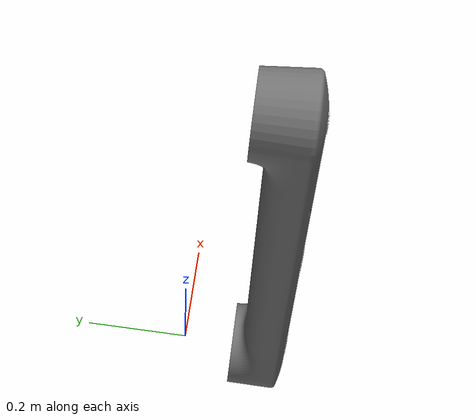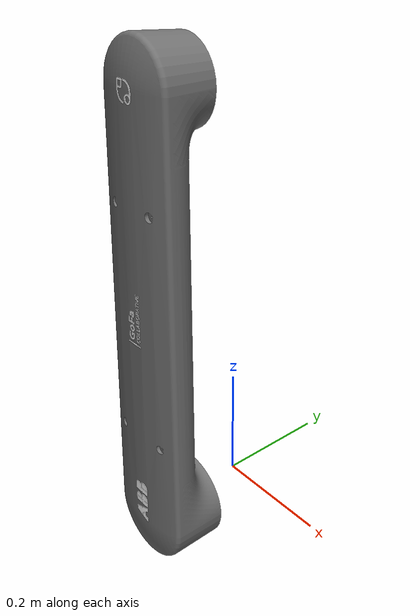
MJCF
<mujoco model="link_2">
  <default>
    <default class="visual">
      <geom group="2" type="mesh" contype="0" conaffinity="0"/>
    </default>
    <default class="collision">
      <geom group="3" type="mesh"/>
    </default>
  </default>
  <asset>
    <material name="material_link_2_0" specular="0.20000000000000004" shininess="1.0" rgba="0.43921569 0.43921569 0.43921569 1.0"/>
    <material name="material_link_2_1" specular="0.20000000000000004" shininess="1.0" rgba="1.00000000 1.00000000 1.00000000 1.0"/>
    <mesh file="link_2_0.obj"/>
    <mesh file="link_2_1.obj"/>
  </asset>
  <worldbody>
    <body name="link_2">
      <geom mesh="link_2_0" material="material_link_2_1" class="visual"/>
      <geom mesh="link_2_1" material="material_link_2_0" class="visual"/>
      <geom mesh="link_2_0" class="collision"/>
      <geom mesh="link_2_1" class="collision"/>
    </body>
  </worldbody>
</mujoco>
